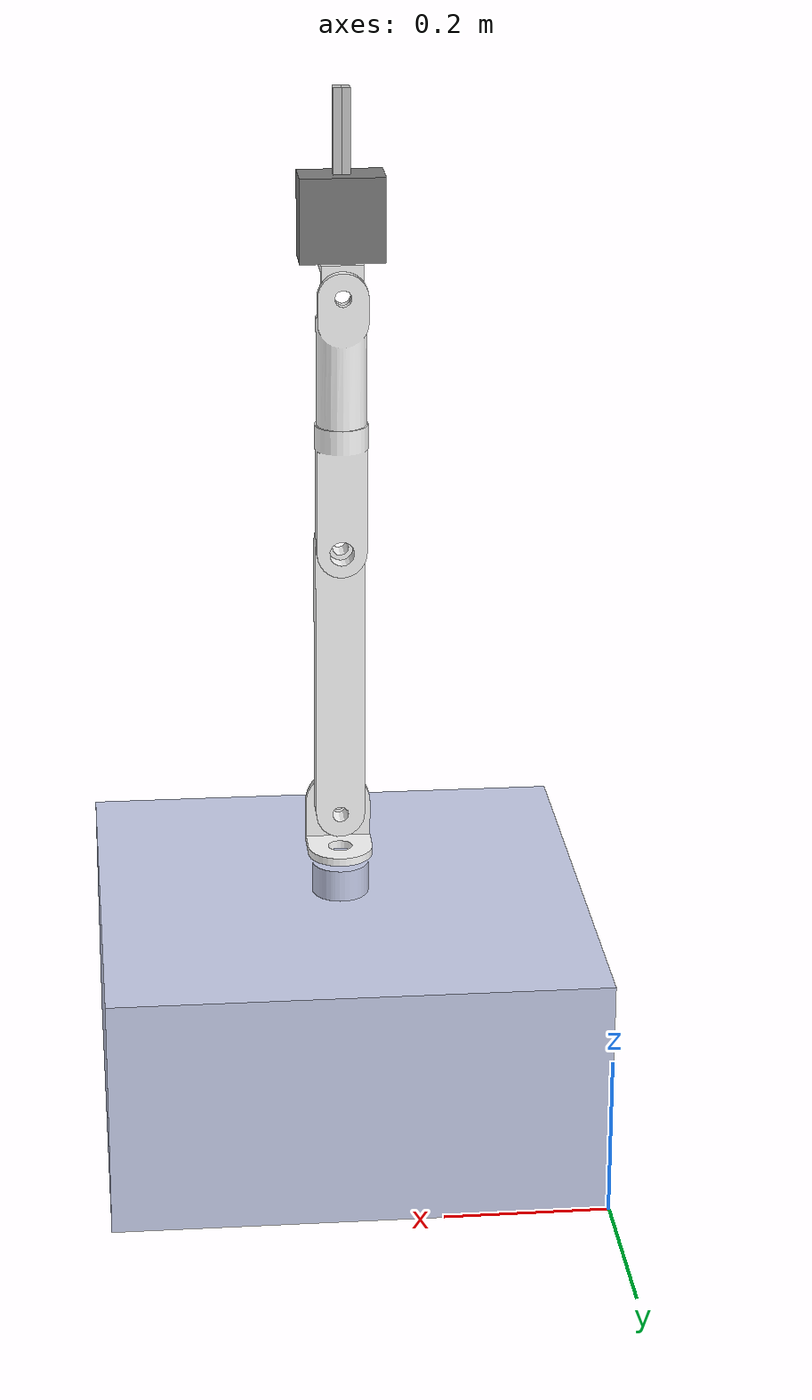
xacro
<?xml version="1.0"?>
<robot xmlns:xacro="http://www.ros.org/wiki/xacro" name="engineer">
    <xacro:arg name="initial_positions_file" default="initial_positions.yaml" />

    <!-- Import engineer urdf file -->
    <xacro:include filename="$(find arm_description)/urdf/engineer.xacro" />

    <!-- Import control_xacro -->
    <xacro:include filename="engineer.ros2_control.xacro" />

    <xacro:engineer_ros2_control name="FakeSystem" initial_positions_file="$(arg initial_positions_file)"/>

</robot>

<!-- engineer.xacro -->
<robot xmlns:xacro="http://www.ros.org/wiki/xacro" name="engineer">

  <!-- Include arm xacro file -->
  <xacro:include filename="$(find arm_description)/urdf/arm.xacro" />

  <!-- Include gripper xacro file -->
  <xacro:include filename="$(find arm_description)/urdf/gripper.xacro" />

  <!-- Properties for joint6 -->
  <xacro:property name="joint_effort_limit" value="100" />
  <xacro:property name="joint_velocity_limit" value="100" />
  <xacro:property name="joint_lower_limit" value="-3.14" />
  <xacro:property name="joint_upper_limit" value="3.14" />

  <!-- Link 6 (gripper rotation link) -->
  <link name="link6">
    <inertial>
      <origin xyz="0 0 0" rpy="0 0 0" />
      <mass value="0.02" />
      <inertia
        ixx="1e-6"
        ixy="0.0"
        ixz="0.0"
        iyy="1e-6"
        iyz="0.0"
        izz="1e-6" />
    </inertial>
    <visual>
      <origin xyz="0 0 0" rpy="0 0 0" />
      <geometry>
        <cylinder radius="0.015" length="0.02" />
      </geometry>
      <material name="">
        <color rgba="0.3 0.3 0.3 1" />
      </material>
    </visual>
    <collision>
      <origin xyz="0 0 0" rpy="0 0 0" />
      <geometry>
        <cylinder radius="0.015" length="0.02" />
      </geometry>
    </collision>
  </link>

  <!-- Joint 6 (gripper rotation joint) -->
  <joint name="joint6" type="revolute">
    <origin xyz="0.09 0 0.02" rpy="0 0 0" />
    <parent link="link5" />
    <child link="link6" />
    <axis xyz="-1 0 0" />
    <limit
      lower="${joint_lower_limit}"
      upper="${joint_upper_limit}"
      effort="${joint_effort_limit}"
      velocity="${joint_velocity_limit}" />
  </joint>

  <!-- Instantiate the gripper and attach it to link6 -->
  <xacro:gripper prefix="" parent="link6">
    <origin xyz="0 0 0" rpy="0 0 0" />
  </xacro:gripper>

</robot>

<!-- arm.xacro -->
<robot xmlns:xacro="http://www.ros.org/wiki/xacro" name="arm">

  <!-- Properties for common parameters -->
  <xacro:property name="joint_effort_limit" value="100" />
  <xacro:property name="joint_velocity_limit" value="100" />
  <xacro:property name="joint_lower_limit" value="-3.14" />
  <xacro:property name="joint_upper_limit" value="3.14" />

  <!-- Base Link -->
  <link name="base_link">
    <inertial>
      <origin xyz="0.3 -0.3 0.150241964992479" rpy="0 0 0" />
      <mass value="108.153938040026" />
      <inertia
        ixx="4.05006766859676"
        ixy="5.96236737040346E-17"
        ixz="-1.98291555702412E-16"
        iyy="4.05006766859676"
        iyz="1.48790520498712E-16"
        izz="6.48009428704952" />
    </inertial>
    <visual>
      <origin xyz="0 0 0" rpy="0 0 0" />
      <geometry>
        <mesh filename="package://arm_description/meshes/base_link.STL" />
      </geometry>
      <material name="">
        <color rgba="0.792156862745098 0.819607843137255 0.933333333333333 1" />
      </material>
    </visual>
    <collision>
      <origin xyz="0 0 0" rpy="0 0 0" />
      <geometry>
        <mesh filename="package://arm_description/meshes/base_link.STL" />
      </geometry>
    </collision>
  </link>

  <!-- Link 1 -->
  <link name="link1">
    <inertial>
      <origin xyz="0.027879900764249 -5.55111512312578E-17 0.0223805358867052" rpy="0 0 0" />
      <mass value="0.10997530633327" />
      <inertia
        ixx="0.000113416478550938"
        ixy="7.68604581237048E-21"
        ixz="-3.77923375022149E-05"
        iyy="0.000140277105028251"
        iyz="-6.74441501657892E-21"
        izz="0.000140702050503476" />
    </inertial>
    <visual>
      <origin xyz="0 0 0" rpy="0 0 0" />
      <geometry>
        <mesh filename="package://arm_description/meshes/link1.STL" />
      </geometry>
      <material name="">
        <color rgba="1 1 1 1" />
      </material>
    </visual>
    <collision>
      <origin xyz="0 0 0" rpy="0 0 0" />
      <geometry>
        <mesh filename="package://arm_description/meshes/link1.STL" />
      </geometry>
    </collision>
  </link>

  <!-- Joint 1 -->
  <joint name="joint1" type="revolute">
    <origin xyz="0.3 -0.3 0.35" rpy="1.5708 -1.5708 0" />
    <parent link="base_link" />
    <child link="link1" />
    <axis xyz="1 0 0" />
    <limit
      lower="${joint_lower_limit}"
      upper="${joint_upper_limit}"
      effort="${joint_effort_limit}"
      velocity="${joint_velocity_limit}" />
  </joint>

  <!-- Link 2 -->
  <link name="link2">
    <inertial>
      <origin xyz="0.175 0.0150000000000001 5.55111512312578E-17" rpy="0 0 0" />
      <mass value="0.695973445725386" />
      <inertia
        ixx="0.000259811944901924"
        ixy="-5.9240876142181E-19"
        ixz="-1.42013607458529E-18"
        iyy="0.00905591464828498"
        iyz="4.68349859133938E-20"
        izz="0.00890049872024186" />
    </inertial>
    <visual>
      <origin xyz="0 0 0" rpy="0 0 0" />
      <geometry>
        <mesh filename="package://arm_description/meshes/link2.STL" />
      </geometry>
      <material name="">
        <color rgba="1 1 1 1" />
      </material>
    </visual>
    <collision>
      <origin xyz="0 0 0" rpy="0 0 0" />
      <geometry>
        <mesh filename="package://arm_description/meshes/link2.STL" />
      </geometry>
    </collision>
  </link>

  <!-- Joint 2 -->
  <joint name="joint2" type="revolute">
    <origin xyz="0.0549999999999999 0 0.0239000000000001" rpy="-1.5707963267949 0 0" />
    <parent link="link1" />
    <child link="link2" />
    <axis xyz="0 1 0" />
    <limit
      lower="${joint_lower_limit}"
      upper="${joint_upper_limit}"
      effort="${joint_effort_limit}"
      velocity="${joint_velocity_limit}" />
  </joint>

  <!-- Link 3 -->
  <link name="link3">
    <inertial>
      <origin xyz="0.011 0.0866621656130951 0" rpy="0 0 0" />
      <mass value="0.282057866614725" />
      <inertia
        ixx="0.00091666723607833"
        ixy="-1.23781996004548E-19"
        ixz="-5.53204332497181E-21"
        iyy="0.000113826214215689"
        iyz="9.52849345211767E-20"
        izz="0.000866955254620232" />
    </inertial>
    <visual>
      <origin xyz="0 0 0" rpy="0 0 0" />
      <geometry>
        <mesh filename="package://arm_description/meshes/link3.STL" />
      </geometry>
      <material name="">
        <color rgba="1 1 1 1" />
      </material>
    </visual>
    <collision>
      <origin xyz="0 0 0" rpy="0 0 0" />
      <geometry>
        <mesh filename="package://arm_description/meshes/link3.STL" />
      </geometry>
    </collision>
  </link>

  <!-- Joint 3 -->
  <joint name="joint3" type="revolute">
    <origin xyz="0.35 0.033 0" rpy="3.1416 0 1.5708" />
    <parent link="link2" />
    <child link="link3" />
    <axis xyz="1 0 0" />
    <limit
      lower="${joint_lower_limit}"
      upper="${joint_upper_limit}"
      effort="${joint_effort_limit}"
      velocity="${joint_velocity_limit}" />
  </joint>

  <!-- Link 4 -->
  <link name="link4">
    <inertial>
      <origin xyz="0.0722067358006824 3.09175477997137E-08 0.00212519424079688" rpy="0 0 0" />
      <mass value="0.401387078802621" />
      <inertia
        ixx="0.000196053620635152"
        ixy="-3.94998604417473E-10"
        ixz="-6.65598685922249E-05"
        iyy="0.000861171635012986"
        iyz="-4.45831496816359E-10"
        izz="0.000851845195995295" />
    </inertial>
    <visual>
      <origin xyz="0 0 0" rpy="0 0 0" />
      <geometry>
        <mesh filename="package://arm_description/meshes/link4.STL" />
      </geometry>
      <material name="">
        <color rgba="1 1 1 1" />
      </material>
    </visual>
    <collision>
      <origin xyz="0 0 0" rpy="0 0 0" />
      <geometry>
        <mesh filename="package://arm_description/meshes/link4.STL" />
      </geometry>
    </collision>
  </link>

  <!-- Joint 4 -->
  <joint name="joint4" type="revolute">
    <origin xyz="0.011 0.159 0" rpy="1.5707963267949 0 1.5707963267949" />
    <parent link="link3" />
    <child link="link4" />
    <axis xyz="-1 0 0" />
    <limit
      lower="${joint_lower_limit}"
      upper="${joint_upper_limit}"
      effort="${joint_effort_limit}"
      velocity="${joint_velocity_limit}" />
  </joint>

  <!-- Link 5 -->
  <link name="link5">
    <inertial>
      <origin xyz="0.0184980485294033 0 0.0157739679081105" rpy="0 0 0" />
      <mass value="0.0420342917352885" />
      <inertia
        ixx="1.91095293507794E-05"
        ixy="2.09484718938033E-21"
        ixz="-6.11471126206109E-06"
        iyy="2.26296969059062E-05"
        iyz="5.93312989901817E-21"
        izz="2.23156365322058E-05" />
    </inertial>
    <visual>
      <origin xyz="0 0 0" rpy="0 0 0" />
      <geometry>
        <mesh filename="package://arm_description/meshes/link5.STL" />
      </geometry>
      <material name="">
        <color rgba="1 1 1 1" />
      </material>
    </visual>
    <collision>
      <origin xyz="0 0 0" rpy="0 0 0" />
      <geometry>
        <mesh filename="package://arm_description/meshes/link5.STL" />
      </geometry>
    </collision>
  </link>

  <!-- Joint 5 -->
  <joint name="joint5" type="revolute">
    <origin xyz="0.158999999999999 0 0.0200000000000001" rpy="3.14159265358979 0 0" />
    <parent link="link4" />
    <child link="link5" />
    <axis xyz="0 0 -1" />
    <limit
      lower="${joint_lower_limit}"
      upper="${joint_upper_limit}"
      effort="${joint_effort_limit}"
      velocity="${joint_velocity_limit}" />
  </joint>

  <!-- Link 6 -->

  <!-- Joint 6 -->

</robot>

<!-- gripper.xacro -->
<robot xmlns:xacro="http://www.ros.org/wiki/xacro">

  <!-- Gripper macro -->
  <xacro:macro name="gripper" params="prefix parent *origin">

    <!-- Properties -->
    <xacro:property name="gripper_base_length" value="0.10" />
    <xacro:property name="gripper_base_width" value="0.10" />
    <xacro:property name="gripper_base_height" value="0.05" />

    <xacro:property name="finger_length" value="0.10" />
    <xacro:property name="finger_width" value="0.01" />
    <xacro:property name="finger_height" value="0.015" />

    <xacro:property name="finger_mass" value="0.01" />
    <xacro:property name="gripper_base_mass" value="0.05" />

    <!-- Gripper base link -->
    <link name="${prefix}gripper_base_link">
      <inertial>
        <origin xyz="0 0 0" rpy="0 0 0" />
        <mass value="${gripper_base_mass}" />
        <inertia
          ixx="${gripper_base_mass * (gripper_base_width*gripper_base_width + gripper_base_height*gripper_base_height) / 12.0}"
          ixy="0.0"
          ixz="0.0"
          iyy="${gripper_base_mass * (gripper_base_length*gripper_base_length + gripper_base_height*gripper_base_height) / 12.0}"
          iyz="0.0"
          izz="${gripper_base_mass * (gripper_base_length*gripper_base_length + gripper_base_width*gripper_base_width) / 12.0}" />
      </inertial>
      <visual>
        <origin xyz="0 0 0" rpy="0 0 0" />
        <geometry>
          <box size="${gripper_base_length} ${gripper_base_width} ${gripper_base_height}" />
        </geometry>
        <material name="gripper_base_material">
          <color rgba="0.5 0.5 0.5 1" />
        </material>
      </visual>
      <collision>
        <origin xyz="0 0 0" rpy="0 0 0" />
        <geometry>
          <box size="${gripper_base_length} ${gripper_base_width} ${gripper_base_height}" />
        </geometry>
      </collision>
    </link>

    <!-- Gripper base joint -->
    <joint name="${prefix}gripper_base_joint" type="fixed">
      <xacro:insert_block name="origin" />
      <parent link="${parent}" />
      <child link="${prefix}gripper_base_link" />
    </joint>

    <!-- Left finger link -->
    <link name="${prefix}left_finger_link">
      <inertial>
        <origin xyz="${finger_length/2.0} 0 0" rpy="0 0 0" />
        <mass value="${finger_mass}" />
        <inertia
          ixx="${finger_mass * (finger_width*finger_width + finger_height*finger_height) / 12.0}"
          ixy="0.0"
          ixz="0.0"
          iyy="${finger_mass * (finger_length*finger_length + finger_height*finger_height) / 12.0}"
          iyz="0.0"
          izz="${finger_mass * (finger_length*finger_length + finger_width*finger_width) / 12.0}" />
      </inertial>
      <visual>
        <origin xyz="${finger_length/2.0} 0 0" rpy="0 0 0" />
        <geometry>
          <box size="${finger_length} ${finger_width} ${finger_height}" />
        </geometry>
        <material name="finger_material">
          <color rgba="0.8 0.8 0.8 1" />
        </material>
      </visual>
      <collision>
        <origin xyz="${finger_length/2.0} 0 0" rpy="0 0 0" />
        <geometry>
          <box size="${finger_length} ${finger_width} ${finger_height}" />
        </geometry>
      </collision>
    </link>

    <!-- Left finger joint -->
    <joint name="${prefix}left_finger_joint" type="prismatic">
      <origin xyz="${gripper_base_length/2.0} ${finger_width/2.0} 0" rpy="0 0 0" />
      <parent link="${prefix}gripper_base_link" />
      <child link="${prefix}left_finger_link" />
      <axis xyz="0 1 0" />
      <limit lower="0.0" upper="0.05" effort="10" velocity="0.5" />
    </joint>

    <!-- Right finger link -->
    <link name="${prefix}right_finger_link">
      <inertial>
        <origin xyz="${finger_length/2.0} 0 0" rpy="0 0 0" />
        <mass value="${finger_mass}" />
        <inertia
          ixx="${finger_mass * (finger_width*finger_width + finger_height*finger_height) / 12.0}"
          ixy="0.0"
          ixz="0.0"
          iyy="${finger_mass * (finger_length*finger_length + finger_height*finger_height) / 12.0}"
          iyz="0.0"
          izz="${finger_mass * (finger_length*finger_length + finger_width*finger_width) / 12.0}" />
      </inertial>
      <visual>
        <origin xyz="${finger_length/2.0} 0 0" rpy="0 0 0" />
        <geometry>
          <box size="${finger_length} ${finger_width} ${finger_height}" />
        </geometry>
        <material name="finger_material">
          <color rgba="0.8 0.8 0.8 1" />
        </material>
      </visual>
      <collision>
        <origin xyz="${finger_length/2.0} 0 0" rpy="0 0 0" />
        <geometry>
          <box size="${finger_length} ${finger_width} ${finger_height}" />
        </geometry>
      </collision>
    </link>

    <!-- Right finger joint -->
    <joint name="${prefix}right_finger_joint" type="prismatic">
      <origin xyz="${gripper_base_length/2.0} ${-finger_width/2.0} 0" rpy="0 0 0" />
      <parent link="${prefix}gripper_base_link" />
      <child link="${prefix}right_finger_link" />
      <axis xyz="0 -1 0" />
      <limit lower="0.0" upper="0.05" effort="10" velocity="0.5" />
      <mimic joint="${prefix}left_finger_joint" multiplier="1" offset="0" />
    </joint>

    <!-- Gripper tip link (tool center point) -->
    <link name="${prefix}gripper_tip_link">
      <inertial>
        <origin xyz="0 0 0" rpy="0 0 0" />
        <mass value="0.001" />
        <inertia ixx="1e-8" ixy="0.0" ixz="0.0" iyy="1e-8" iyz="0.0" izz="1e-8" />
      </inertial>
    </link>

    <!-- Gripper tip joint -->
    <joint name="${prefix}gripper_tip_joint" type="fixed">
      <origin xyz="${gripper_base_length/2.0 + finger_length} 0 0" rpy="0 0 0" />
      <parent link="${prefix}gripper_base_link" />
      <child link="${prefix}gripper_tip_link" />
    </joint>

  </xacro:macro>

</robot>
